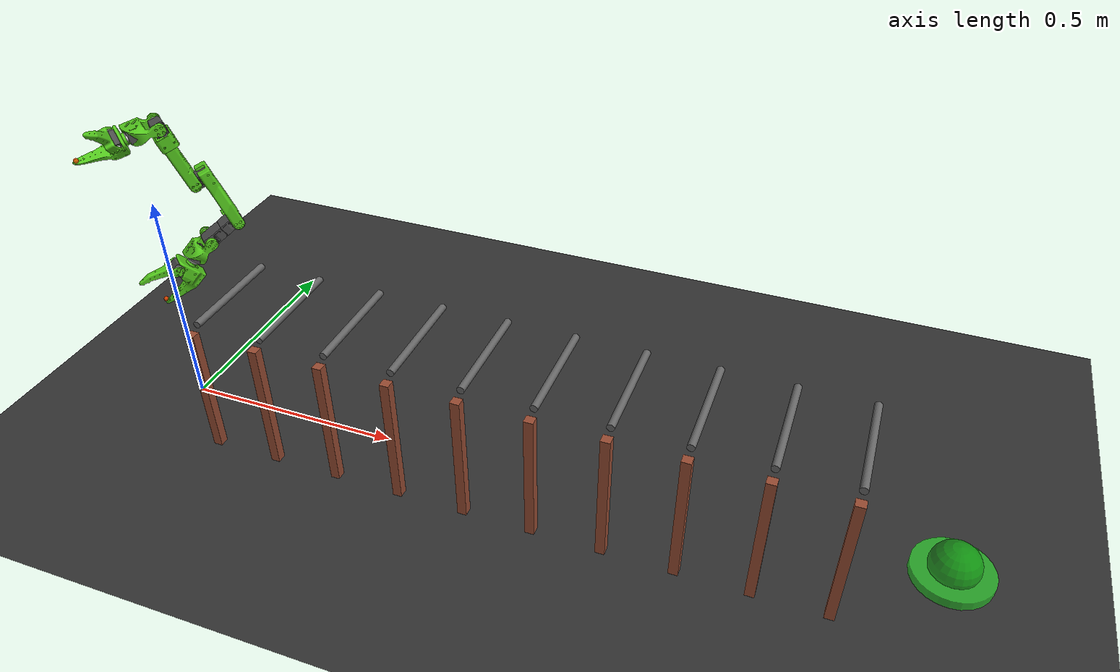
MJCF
<mujoco model="dual2">
  <compiler angle="radian" meshdir="../assets/parts/"/>

  <!-- Increased iterations and solver settings for stability -->
  <option tolerance="1e-8" gravity="0 0 -9.81" iterations="100" solver="Newton" integrator="implicit"/>

  <size nkey="2"/>

  <default>
    <!-- Low damping for fast responsive joints -->
    <joint limited="true" armature="0.01" damping="0.3"/>
    <geom condim="4" friction="1.5 0.8 0.02"/>
    <general biastype="affine" gainprm="50" biasprm="0 -50 -5"/>
  </default>

  <asset>
    <texture type="2d" colorspace="auto" name="grid" builtin="checker" rgb1="0.15 0.15 0.15" rgb2="0.25 0.25 0.25" width="512" height="512"/>
    <material name="green" shininess="0.3" rgba="0.329 0.788 0.114 1"/>
    <material name="dark_gray" specular="0.3" shininess="0.1" rgba="0.302 0.302 0.302 1"/>
    <material name="white" specular="0.4" shininess="0.2" rgba="0.918 0.918 0.918 1"/>
    <material name="silver" specular="0.8" rgba="0.604 0.647 0.686 1"/>
    <material name="grid_mat" texture="grid" texrepeat="10 10" reflectance="0.1"/>
    <mesh name="socket_button_head_screw_m3x0_5_x_5__3d0b7d67b03d7dab03d7e71c432bce35" content_type="model/stl" file="socket_button_head_screw_m3x0_5_x_5__3d0b7d67b03d7dab03d7e71c432bce35.stl"/>
    <mesh name="sts3215_servo" content_type="model/stl" file="sts3215_servo.stl"/>
    <mesh name="driven_horn" content_type="model/stl" file="driven_horn.stl"/>
    <mesh name="passive_horn" content_type="model/stl" file="passive_horn.stl"/>
    <mesh name="so_arm100_08k_116_square" content_type="model/stl" file="so_arm100_08k_116_square.stl"/>
    <mesh name="so_arm100_08k_mirror" content_type="model/stl" file="so_arm100_08k_mirror.stl"/>
    <mesh name="so_arm100_08k_mirror__2" content_type="model/stl" file="so_arm100_08k_mirror__2.stl"/>
    <mesh name="wrist_roll_pitch_08i" content_type="model/stl" file="wrist_roll_pitch_08i.stl"/>
    <mesh name="wrist_roll_08c" content_type="model/stl" file="wrist_roll_08c.stl"/>
    <mesh name="moving_jaw_08d" content_type="model/stl" file="moving_jaw_08d.stl"/>
  </asset>

  <worldbody>
    <geom name="floor" size="2 2 0.1" type="plane" material="grid_mat"/>
    <light pos="0 0 5" dir="0 0 -1" type="directional" diffuse="0.9 0.9 0.9"/>
    <light pos="1 2 3" dir="-0.259161 -0.431934 -0.863868" type="directional" diffuse="0.4 0.4 0.4" specular="0.2 0.2 0.2"/>
  <body name="base" pos="0.20037503 0.0999989 0.37076306">
      <inertial pos="-0.0403 -0.0907 0.1008" mass="0.082" diaginertia="4.6e-05 4.2e-05 5.2e-05"/>
      <joint name="root" type="free" armature="0" damping="0"/>
      <geom pos="-0.0751771 -0.100049 0.0826237" quat="0.10723 0.45295 -0.54299 -0.698928" type="mesh" material="silver" mesh="socket_button_head_screw_m3x0_5_x_5__3d0b7d67b03d7dab03d7e71c432bce35"/>
      <geom pos="-0.0528391 -0.105496 0.0890825" quat="0.396108 0.24446 0.110267 -0.878168" type="mesh" material="dark_gray" mesh="sts3215_servo"/>
      <geom pos="-0.0528391 -0.105496 0.0890825" quat="0.396108 0.24446 0.110267 -0.878168" type="mesh" material="white" mesh="driven_horn"/>
      <geom pos="-0.0466544 -0.125234 0.0826237" quat="0.396108 0.24446 0.110267 -0.878168" type="mesh" material="white" mesh="passive_horn"/>
      <geom pos="-0.00676049 -0.0800519 0.119" quat="-0.110266 0.878168 0.396108 0.244461" type="mesh" material="white" mesh="passive_horn"/>
      <geom pos="-0.0352832 -0.0548674 0.119" quat="0.698928 -0.542989 -0.452951 0.107231" type="mesh" material="silver" mesh="socket_button_head_screw_m3x0_5_x_5__3d0b7d67b03d7dab03d7e71c432bce35"/>
      <geom pos="-0.027112 -0.076359 0.112541" quat="-0.110266 0.878168 0.396108 0.244461" type="mesh" material="dark_gray" mesh="sts3215_servo"/>
      <geom pos="-0.027112 -0.076359 0.112541" quat="-0.110266 0.878168 0.396108 0.244461" type="mesh" material="white" mesh="driven_horn"/>
      <body name="arm1_link1" pos="-0.0340463 -0.0559595 0.119" quat="0.694354 0.359369 0.608978 -0.133685">
        <inertial pos="-0.0692389 -0.00301229 0.0197206" quat="0.475865 0.474137 0.522165 0.525443" mass="0.198604" diaginertia="0.00036564 0.000313285 9.33286e-05"/>
        <joint name="arm1_shoulder" pos="0 0 0" axis="0 0 1" range="-2.94151 0.200086"/>
        <geom pos="-0.065085 0.012 0.0197" quat="0.707105 0.707108 0 0" type="mesh" material="green" mesh="so_arm100_08k_116_square"/>
        <geom pos="-0.11257 -0.028 0.0379" quat="0.499998 0.5 -0.500002 -0.5" type="mesh" material="white" mesh="passive_horn"/>
        <geom pos="-0.11257 -0.028 -0.00015" quat="9.38184e-07 -0.707105 0.707108 -9.38188e-07" type="mesh" material="silver" mesh="socket_button_head_screw_m3x0_5_x_5__3d0b7d67b03d7dab03d7e71c432bce35"/>
        <geom pos="-0.11257 -0.0155 0.0202" quat="0.499998 0.5 -0.500002 -0.5" type="mesh" material="dark_gray" mesh="sts3215_servo"/>
        <geom pos="-0.11257 -0.0155 0.0202" quat="0.499998 0.5 -0.500002 -0.5" type="mesh" material="white" mesh="driven_horn"/>
        <body name="arm1_link2" pos="-0.11257 -0.028 0.0015" quat="1 0 0 3.01201e-09">
          <inertial pos="-0.0758873 0.0012846 0.0147496" quat="0.477269 0.542047 0.516114 0.460463" mass="0.18055" diaginertia="0.000327255 0.000287952 6.19217e-05"/>
          <joint name="arm1_elbow" pos="0 0 0" axis="0 0 1" range="0 3.14159"/>
          <geom pos="-0.0648499 -0.032 0.0182" quat="0.707105 0.707108 0 0" type="mesh" material="green" mesh="so_arm100_08k_mirror"/>
          <geom pos="-0.0648499 -0.032 0.0184" quat="0.707105 0.707108 0 0" type="mesh" material="green" mesh="so_arm100_08k_mirror__2"/>
          <geom pos="-0.1349 0.0052 0.0363" quat="9.38184e-07 9.38187e-07 -0.707108 -0.707105" type="mesh" material="white" mesh="passive_horn"/>
          <geom pos="-0.1349 0.0052 -0.00175" quat="2.17347e-12 -1.32679e-06 -1 1.32679e-06" type="mesh" material="silver" mesh="socket_button_head_screw_m3x0_5_x_5__3d0b7d67b03d7dab03d7e71c432bce35"/>
          <geom pos="-0.1224 0.0052 0.0186" quat="9.38184e-07 9.38187e-07 -0.707108 -0.707105" type="mesh" material="dark_gray" mesh="sts3215_servo"/>
          <geom pos="-0.1224 0.0052 0.0186" quat="9.38184e-07 9.38187e-07 -0.707108 -0.707105" type="mesh" material="white" mesh="driven_horn"/>
          <body name="arm1_wrist_pitch" pos="-0.1349 0.0052 -0.0001" quat="0.664778 0 0 -0.747041">
            <inertial pos="0.0348768 2.4895e-05 0.0103283" quat="0.659112 -0.259442 -0.258434 0.656866" mass="0.0789518" diaginertia="4.97311e-05 3.37971e-05 2.6432e-05"/>
            <joint name="arm1_wrist_pitch" pos="0 0 0" axis="0 0 1" range="-3.02519 0.116402"/>
            <geom pos="0.028 0 0.0181" quat="0.499998 0.5 0.5 -0.500002" type="mesh" material="green" mesh="wrist_roll_pitch_08i"/>
            <geom pos="0.0247 0 0.0181" quat="0.499998 0.5 -0.5 0.500002" type="mesh" material="white" mesh="passive_horn"/>
            <geom pos="0.06275 0 0.0181" quat="9.38184e-07 -0.707105 -9.38187e-07 -0.707108" type="mesh" material="silver" mesh="socket_button_head_screw_m3x0_5_x_5__3d0b7d67b03d7dab03d7e71c432bce35"/>
            <geom pos="0.0424 0 0.0056" quat="0.499998 0.5 -0.5 0.500002" type="mesh" material="dark_gray" mesh="sts3215_servo"/>
            <geom pos="0.0424 0 0.0056" quat="0.499998 0.5 -0.5 0.500002" type="mesh" material="white" mesh="driven_horn"/>
            <body name="arm1_wrist_roll" pos="0.0611 0 0.0181" quat="0.65593 0.264111 -0.655932 -0.264111">
              <inertial pos="-0.00588121 0.000485423 -0.0272358" quat="0.649924 0.235394 0.235171 0.683289" mass="0.112045" diaginertia="7.48277e-05 6.46447e-05 3.99649e-05"/>
              <joint name="arm1_wrist_roll" pos="0 0 0" axis="0 0 1" range="-3.0 2.4"/>
              <geom quat="0.707105 0.707108 0 0" type="mesh" material="green" mesh="wrist_roll_08c"/>
              <geom pos="0.0198 -0.0178 -0.023625" quat="1.32679e-06 1 0 0" type="mesh" material="white" mesh="passive_horn"/>
              <geom pos="0.0198 0.02025 -0.023625" quat="0.707105 -0.707108 0 0" type="mesh" material="silver" mesh="socket_button_head_screw_m3x0_5_x_5__3d0b7d67b03d7dab03d7e71c432bce35"/>
              <geom pos="0.0073 -0.0001 -0.023625" quat="1.32679e-06 1 0 0" type="mesh" material="dark_gray" mesh="sts3215_servo"/>
              <geom pos="0.0073 -0.0001 -0.023625" quat="1.32679e-06 1 0 0" type="mesh" material="white" mesh="driven_horn"/>
              <site name="arm1_tip" pos="-0.0029 -0.0 -0.098" size="0.005" rgba="1 0.3 0 0.8"/>
              <body name="arm1_gripper" pos="0.0198 0.0186 -0.023625" quat="0.525396 0.525398 -0.473241 0.473243">
                <inertial pos="-0.00739035 -0.0295297 0.0192843" quat="0.689904 0.712368 -0.0928179 -0.0891538" mass="0.0252688" diaginertia="1.38563e-05 1.12152e-05 3.72291e-06"/>
                <joint name="arm1_gripper" pos="0 0 0" axis="0 0 1" range="-1.46644 0.104359"/>
                <geom pos="0 0 0.0189" quat="0.70385 -0.703853 0.0677732 -0.067773" type="mesh" material="green" mesh="moving_jaw_08d"/>
              </body>
            </body>
          </body>
        </body>
      </body>
      <body name="arm2_wrist_pitch" pos="-0.0739402 -0.101141 0.0826237" quat="0.510736 -0.0285358 0.706532 -0.489027">
        <inertial pos="0.0348768 2.4895e-05 0.0103283" quat="0.659112 -0.259442 -0.258434 0.656866" mass="0.0789518" diaginertia="4.97311e-05 3.37971e-05 2.6432e-05"/>
        <joint name="arm2_shoulder" pos="0 0 0" axis="0 0 1" range="-1.79454 1.34706"/>
        <geom pos="0.0247 0 0.0181" quat="0.499998 0.5 -0.5 0.500002" type="mesh" material="white" mesh="passive_horn"/>
        <geom pos="0.06275 0 0.0181" quat="9.38184e-07 -0.707105 -9.38187e-07 -0.707108" type="mesh" material="silver" mesh="socket_button_head_screw_m3x0_5_x_5__3d0b7d67b03d7dab03d7e71c432bce35"/>
        <geom pos="0.0424 0 0.0056" quat="0.499998 0.5 -0.5 0.500002" type="mesh" material="white" mesh="driven_horn"/>
        <geom pos="0.0424 0 0.0056" quat="0.499998 0.5 -0.5 0.500002" type="mesh" material="dark_gray" mesh="sts3215_servo"/>
        <geom pos="0.028 0 0.0181" quat="0.499998 0.5 0.5 -0.500002" type="mesh" material="green" mesh="wrist_roll_pitch_08i"/>
        <body name="arm2_wrist_roll" pos="0.0611 0 0.0181" quat="0.499998 0.5 -0.500002 -0.5">
          <inertial pos="-0.00588121 0.000485423 -0.0272358" quat="0.649924 0.235394 0.235171 0.683289" mass="0.112045" diaginertia="7.48277e-05 6.46447e-05 3.99649e-05"/>
          <joint name="arm2_wrist_roll" pos="0 0 0" axis="0 0 1" range="0 3.14159"/>
          <geom pos="0.0073 -0.0001 -0.023625" quat="1.32679e-06 1 0 0" type="mesh" material="white" mesh="driven_horn"/>
          <geom pos="0.0073 -0.0001 -0.023625" quat="1.32679e-06 1 0 0" type="mesh" material="dark_gray" mesh="sts3215_servo"/>
          <geom quat="0.707105 0.707108 0 0" type="mesh" material="green" mesh="wrist_roll_08c"/>
          <geom pos="0.0198 0.02025 -0.023625" quat="0.707105 -0.707108 0 0" type="mesh" material="silver" mesh="socket_button_head_screw_m3x0_5_x_5__3d0b7d67b03d7dab03d7e71c432bce35"/>
          <geom pos="0.0198 -0.0178 -0.023625" quat="1.32679e-06 1 0 0" type="mesh" material="white" mesh="passive_horn"/>
          <site name="arm2_tip" pos="-0.0029 -0.0 -0.098" size="0.005" rgba="1 0.3 0 0.8"/>
          <body name="arm2_gripper" pos="0.0198 0.0186 -0.023625" quat="0.644246 0.644248 -0.291454 0.291455">
            <inertial pos="-0.00739035 -0.0295297 0.0192843" quat="0.689904 0.712368 -0.0928179 -0.0891538" mass="0.0252688" diaginertia="1.38563e-05 1.12152e-05 3.72291e-06"/>
            <joint name="arm2_gripper" pos="0 0 0" axis="0 0 1" range="-0.849688 0.721109"/>
            <geom pos="0 0 0.0189" quat="0.70385 -0.703853 0.0677732 -0.067773" type="mesh" material="green" mesh="moving_jaw_08d"/>
          </body>
        </body>
      </body>
    </body>
    <!-- Wall 1 with horizontal bar at top for grasping -->
    <body name="wall1" pos="0.15 0 0.15">
      <geom name="wall1" pos="0 -0.14 0" size="0.01 0.01 0.15" type="box" contype="0" conaffinity="0" rgba="0.6 0.3 0.2 1"/>
      <geom name="bar1" pos="0 0 0.16" quat="0.70710678 0.70710678 0 0" size="0.008 0.12" type="cylinder" rgba="0.4 0.4 0.4 1" friction="8 4 0.1"/>
    </body>
    <!-- Wall 2 with horizontal bar -->
    <body name="wall2" pos="0.3 0 0.15">
      <geom name="wall2" pos="0 -0.14 0" size="0.01 0.01 0.15" type="box" contype="0" conaffinity="0" rgba="0.6 0.3 0.2 1"/>
      <geom name="bar2" pos="0 0 0.16" quat="0.70710678 0.70710678 0 0" size="0.008 0.12" type="cylinder" rgba="0.4 0.4 0.4 1" friction="8 4 0.1"/>
    </body>
    <!-- Wall 3 with horizontal bar -->
    <body name="wall3" pos="0.45 0 0.15">
      <geom name="wall3" pos="0 -0.14 0" size="0.01 0.01 0.15" type="box" contype="0" conaffinity="0" rgba="0.6 0.3 0.2 1"/>
      <geom name="bar3" pos="0 0 0.16" quat="0.70710678 0.70710678 0 0" size="0.008 0.12" type="cylinder" rgba="0.4 0.4 0.4 1" friction="8 4 0.1"/>
    </body>
    <!-- Wall 4 with horizontal bar -->
    <body name="wall4" pos="0.6 0 0.15">
      <geom name="wall4" pos="0 -0.14 0" size="0.01 0.01 0.15" type="box" contype="0" conaffinity="0" rgba="0.6 0.3 0.2 1"/>
      <geom name="bar4" pos="0 0 0.16" quat="0.70710678 0.70710678 0 0" size="0.008 0.12" type="cylinder" rgba="0.4 0.4 0.4 1" friction="8 4 0.1"/>
    </body>
    <!-- Wall 5 with horizontal bar -->
    <body name="wall5" pos="0.75 0 0.15">
      <geom name="wall5" pos="0 -0.14 0" size="0.01 0.01 0.15" type="box" contype="0" conaffinity="0" rgba="0.6 0.3 0.2 1"/>
      <geom name="bar5" pos="0 0 0.16" quat="0.70710678 0.70710678 0 0" size="0.008 0.12" type="cylinder" rgba="0.4 0.4 0.4 1" friction="8 4 0.1"/>
    </body>
    <!-- Wall 6 with horizontal bar -->
    <body name="wall6" pos="0.9 0 0.15">
      <geom name="wall6" pos="0 -0.14 0" size="0.01 0.01 0.15" type="box" contype="0" conaffinity="0" rgba="0.6 0.3 0.2 1"/>
      <geom name="bar6" pos="0 0 0.16" quat="0.70710678 0.70710678 0 0" size="0.008 0.12" type="cylinder" rgba="0.4 0.4 0.4 1" friction="8 4 0.1"/>
    </body>
    <!-- Wall 7 with horizontal bar -->
    <body name="wall7" pos="1.05 0 0.15">
      <geom name="wall7" pos="0 -0.14 0" size="0.01 0.01 0.15" type="box" contype="0" conaffinity="0" rgba="0.6 0.3 0.2 1"/>
      <geom name="bar7" pos="0 0 0.16" quat="0.70710678 0.70710678 0 0" size="0.008 0.12" type="cylinder" rgba="0.4 0.4 0.4 1" friction="8 4 0.1"/>
    </body>
    <!-- Wall 8 with horizontal bar -->
    <body name="wall8" pos="1.2 0 0.15">
      <geom name="wall8" pos="0 -0.14 0" size="0.01 0.01 0.15" type="box" contype="0" conaffinity="0" rgba="0.6 0.3 0.2 1"/>
      <geom name="bar8" pos="0 0 0.16" quat="0.70710678 0.70710678 0 0" size="0.008 0.12" type="cylinder" rgba="0.4 0.4 0.4 1" friction="8 4 0.1"/>
    </body>
    <!-- Wall 9 with horizontal bar -->
    <body name="wall9" pos="1.35 0 0.15">
      <geom name="wall9" pos="0 -0.14 0" size="0.01 0.01 0.15" type="box" contype="0" conaffinity="0" rgba="0.6 0.3 0.2 1"/>
      <geom name="bar9" pos="0 0 0.16" quat="0.70710678 0.70710678 0 0" size="0.008 0.12" type="cylinder" rgba="0.4 0.4 0.4 1" friction="8 4 0.1"/>
    </body>
    <!-- Wall 10 with horizontal bar -->
    <body name="wall10" pos="1.5 0 0.15">
      <geom name="wall10" pos="0 -0.14 0" size="0.01 0.01 0.15" type="box" contype="0" conaffinity="0" rgba="0.6 0.3 0.2 1"/>
      <geom name="bar10" pos="0 0 0.16" quat="0.70710678 0.70710678 0 0" size="0.008 0.12" type="cylinder" rgba="0.4 0.4 0.4 1" friction="8 4 0.1"/>
    </body>
    <body name="target" pos="1.7 0 0.05">
      <geom name="target" size="0.08 0.01" type="cylinder" contype="0" conaffinity="0" rgba="0.2 0.8 0.2 0.8"/>
      <site name="target_site" pos="0 0 0.02" size="0.05" rgba="0 1 0 0.5"/>
    </body>
  </worldbody>

  <contact>
    <exclude body1="base" body2="arm1_link1"/>
    <exclude body1="base" body2="arm2_wrist_pitch"/>
    <exclude body1="arm1_link1" body2="arm1_link2"/>
    <exclude body1="arm1_link2" body2="arm1_wrist_pitch"/>
    <exclude body1="arm1_wrist_pitch" body2="arm1_wrist_roll"/>
    <exclude body1="arm1_wrist_roll" body2="arm1_gripper"/>
    <exclude body1="arm2_wrist_pitch" body2="arm2_wrist_roll"/>
    <exclude body1="arm2_wrist_roll" body2="arm2_gripper"/>
  </contact>

  <actuator>
    <!-- HIGH actuator gains for FAST powerful movements -->
    <general name="arm1_shoulder_act" joint="arm1_shoulder" ctrlrange="-2.94 0.2" gainprm="250" biasprm="0 -250"/>
    <general name="arm1_elbow_act" joint="arm1_elbow" ctrlrange="0 3.14" gainprm="200" biasprm="0 -200"/>
    <general name="arm1_wrist_pitch_act" joint="arm1_wrist_pitch" ctrlrange="-3 0.1" gainprm="150" biasprm="0 -150"/>
    <general name="arm1_wrist_roll_act" joint="arm1_wrist_roll" ctrlrange="-3.0 2.4" gainprm="100" biasprm="0 -100"/>
    <general name="arm1_gripper_act" joint="arm1_gripper" ctrlrange="-1.4 0.1" gainprm="200" biasprm="0 -200 -20"/>
    <general name="arm2_shoulder_act" joint="arm2_shoulder" ctrlrange="-1.7 1.3" gainprm="200" biasprm="0 -200"/>
    <general name="arm2_wrist_roll_act" joint="arm2_wrist_roll" ctrlrange="0 3.14" gainprm="100" biasprm="0 -100"/>
    <general name="arm2_gripper_act" joint="arm2_gripper" ctrlrange="-0.8 0.7" gainprm="200" biasprm="0 -200 -20"/>
  </actuator>

  <sensor>
    <jointpos joint="arm1_shoulder" name="arm1_shoulder_pos"/>
    <jointpos joint="arm1_elbow" name="arm1_elbow_pos"/>
    <jointpos joint="arm1_wrist_pitch" name="arm1_wrist_pitch_pos"/>
    <jointpos joint="arm1_wrist_roll" name="arm1_wrist_roll_pos"/>
    <jointpos joint="arm1_gripper" name="arm1_gripper_pos"/>
    <jointpos joint="arm2_shoulder" name="arm2_shoulder_pos"/>
    <jointpos joint="arm2_wrist_roll" name="arm2_wrist_roll_pos"/>
    <jointpos joint="arm2_gripper" name="arm2_gripper_pos"/>
    <framepos objtype="body" objname="base" name="base_pos"/>
    <framequat objtype="body" objname="base" name="base_quat"/>
    <touch site="arm1_tip" name="arm1_touch"/>
    <touch site="arm2_tip" name="arm2_touch"/>
  </sensor>

  <keyframe>
  <!-- Robot hooked on bar1 with the original moving jaw and fixed wrist/gripper meshes. -->
  <!-- qpos: x y z qw qx qy qz arm1_sh arm1_elb arm1_wp arm1_wr arm1_gr arm2_sh arm2_wr arm2_gr -->
  <key name="hanging" qpos="0.19522 0.06455 -0.04578 0.99973 0.00221 -0.02322 0.00009 -2.31747 2.48423 -1.64500 -0.36548 -1.39375 -1.69627 0.00000 -0.80002" ctrl="-2.31747 2.48423 -1.64500 -0.36548 -1.39375 -1.69627 0.00000 -0.80002"/>
  <key name="wall1_grip" qpos="0.19522 0.06455 -0.04578 0.99973 0.00221 -0.02322 0.00009 -2.31747 2.48423 -1.64500 -0.36548 -1.39375 -1.69627 0.00000 -0.80002" ctrl="-2.31747 2.48423 -1.64500 -0.36548 -1.39375 -1.69627 0.00000 -0.80002"/>
  </keyframe>
 </mujoco>
